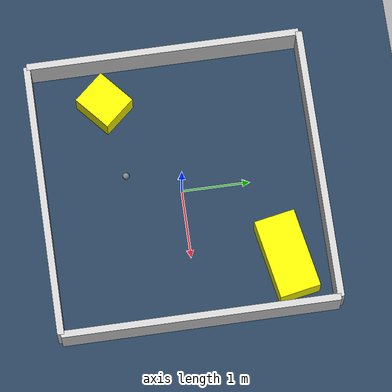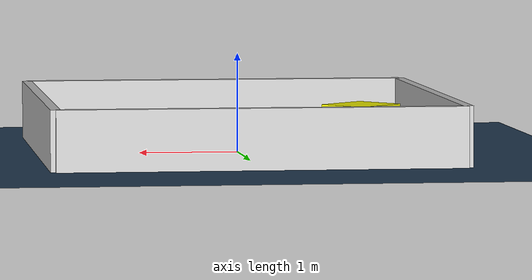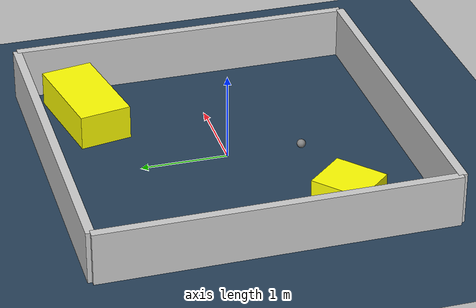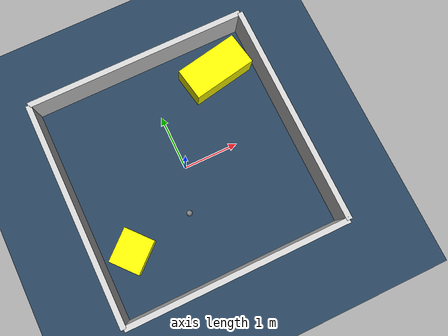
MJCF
<?xml version="1.0" ?>
<mujoco model="generated_environment">
  <option timestep="0.01" integrator="RK4" cone="elliptic"/>
  <default>
    <geom density="1"/>
  </default>
  <asset>
    <texture builtin="gradient" height="3072" rgb1="0.3 0.5 0.7" rgb2="0 0 0" type="skybox" width="512"/>
    <texture builtin="checker" height="300" mark="edge" markrgb="0.8 0.8 0.8" name="groundplane" rgb1="0.2 0.3 0.4" rgb2="0.1 0.2 0.3" type="2d" width="300"/>
    <material name="groundplane" reflectance="0.2" texrepeat="5 5" texture="groundplane" texuniform="true"/>
    <material name="robot" rgba="0.0 1.0 0.0 1"/>
  </asset>
  <worldbody>
    <light dir="0 0 -1" directional="true" pos="0 0 1.5"/>
    <geom condim="4" friction="1.0 0.005 0.001" material="groundplane" name="floor" size="0 0 0.05" type="plane"/>
    <body name="walls">
      <geom name="wall_1" condim="4" pos="-2.0 0.0 0.3" rgba="0.800000011920929 0.800000011920929 0.800000011920929 1.0" size="0.05 2.0 0.3" type="box"/>
      <geom name="wall_2" condim="4" pos="2.0 0.0 0.3" rgba="0.800000011920929 0.800000011920929 0.800000011920929 1.0" size="0.05 2.0 0.3" type="box"/>
      <geom name="wall_3" condim="4" pos="0.0 -2.0 0.3" rgba="0.800000011920929 0.800000011920929 0.800000011920929 1.0" size="2.0 0.05 0.3" type="box"/>
      <geom name="wall_4" condim="4" pos="0.0 2.0 0.3" rgba="0.800000011920929 0.800000011920929 0.800000011920929 1.0" size="2.0 0.05 0.3" type="box"/>
    </body>
    <body name="robot">
      <joint name="joint_x" type="slide" pos="0 0 0" axis="1 0 0"/>
      <joint name="joint_y" type="slide" pos="0 0 0" axis="0 1 0"/>
      <geom name="robot" type="sphere" pos="-0.28492240014577974 -0.7753328744738248 0.2" size="0.05" mass="5." friction="1.0 0.005 0.0001" condim="4"/>
      <site name="sensor_ball"/>
    </body>
    <body name="obstacle_1_movable">
      <geom name="obstacle_1_movable" condim="4" pos="1.2262259833088904 1.354628270288639 0.2" euler="0 0 190.54138704389345" friction="1.0 0.005 0.001" rgba="1 1 0 1" size="0.5869702407037904 0.30151112393026513 0.2" type="box" mass="0.1"/>
      <joint type="free"/>
    </body>
    <body name="obstacle_2_movable">
      <geom name="obstacle_2_movable" condim="4" pos="-1.4176937520693744 -0.9453117904498818 0.2" euler="0 0 131.0997055924588" friction="1.0 0.005 0.001" rgba="1 1 0 1" size="0.2762369584079206 0.30849140547504195 0.2" type="box" mass="0.1"/>
      <joint type="free"/>
    </body>
  </worldbody>
  <actuator>
    <motor name="actuator_x" joint="joint_x" gear="1" ctrlrange="-1 1"/>
    <motor name="actuator_y" joint="joint_y" gear="1" ctrlrange="-1 1"/>
  </actuator>
</mujoco>
